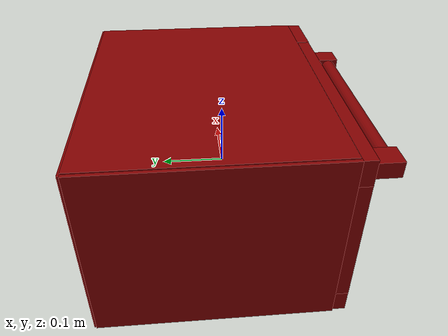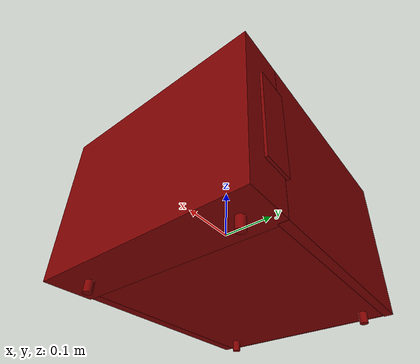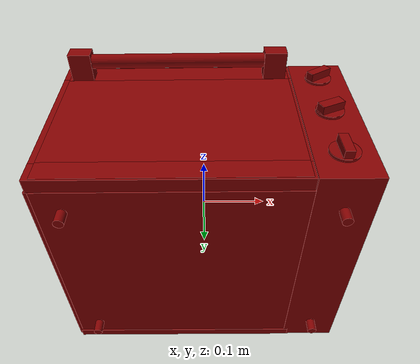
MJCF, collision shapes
<?xml version='1.0' encoding='UTF-8'?>
<mujoco model="model">
  <option timestep="0.002" gravity="0.0 0.0 -9.81"/>
  <compiler angle="radian"/>
  <asset>
    <mesh file="visuals/door.obj" name="door_vis"/>
    <mesh file="visuals/knob_function.obj" name="knob_function_vis"/>
    <mesh file="visuals/knob_temp.obj" name="knob_temp_vis"/>
    <mesh file="visuals/knob_time.obj" name="knob_time_vis"/>
    <mesh file="visuals/rack0.obj" name="rack0_vis"/>
    <mesh file="visuals/Body001.obj" name="Body001_vis"/>
    <mesh file="visuals/window.obj" name="window_vis"/>
    <texture file="visuals/T_BC001.png" name="Body001_material" type="2d"/>
    <material name="Body001_material" rgba="1 1 1 1.0" texture="Body001_material" shininess="-1023.0" specular="0.5"/>
    <texture file="visuals/T_BC001.png" name="door_material" type="2d"/>
    <material name="door_material" rgba="1 1 1 1.0" texture="door_material" shininess="-1023.0" specular="0.5"/>
    <texture file="visuals/T_BC001.png" name="window_material" type="2d"/>
    <material name="window_material" rgba="1 1 1 0.800000011920929" texture="window_material" shininess="0.5" specular="0.3103448502657381"/>
    <texture file="visuals/T_BC001.png" name="knob_function_material" type="2d"/>
    <material name="knob_function_material" rgba="1 1 1 1.0" texture="knob_function_material" shininess="-1023.0" specular="0.3103448502657381"/>
    <texture file="visuals/T_BC001.png" name="knob_temp_material" type="2d"/>
    <material name="knob_temp_material" rgba="1 1 1 1.0" texture="knob_temp_material" shininess="-1023.0" specular="0.3103448502657381"/>
    <texture file="visuals/T_BC001.png" name="knob_time_material" type="2d"/>
    <material name="knob_time_material" rgba="1 1 1 1.0" texture="knob_time_material" shininess="-1023.0" specular="0.3103448502657381"/>
    <texture file="visuals/T_BC001.png" name="rack0_material" type="2d"/>
    <material name="rack0_material" rgba="1 1 1 1.0" texture="rack0_material" shininess="-1023.0" specular="5"/>
  </asset>
  <default>
    <default class="visual">
      <geom conaffinity="0" contype="0" group="1" type="mesh"/>
    </default>
    <default class="collision">
      <geom group="0" rgba="0.5 0 0 0.5"/>
    </default>
    <default class="spawn">
      <geom group="0" rgba="1 1 1 0.5" contype="0" conaffinity="0"/>
      <site group="0" rgba="1 1 1 0.5"/>
    </default>
    <default class="region">
      <geom group="1" conaffinity="0" contype="0" rgba="0 1 0 0"/>
    </default>
  </default>
  <worldbody>
    <body>
      <body name="object">
        <geom mesh="Body001_vis" type="mesh" solimp="0.998 0.998 0.001" solref="0.001 1" friction="0.95 0.3 0.1" class="visual" material="Body001_material"/>
        <geom class="collision" type="box" pos="0.00000000 0.02843389 0.14877398" size="0.22226327657699585 0.17692340910434723 0.00372602348215878" quat="1.0 0.0 0.0 0.0"/>
        <geom class="collision" type="box" pos="-0.22373813 0.02765823 0.00917090" size="0.003761850530281663 0.17769907414913177 0.1415046900510788" quat="1.0 0.0 0.0 0.0"/>
        <geom class="collision" type="box" pos="-0.03912221 0.02781285 -0.12802599" size="0.1831410676240921 0.1775444597005844 0.004880670458078384" quat="1.0 0.0 0.0 0.0"/>
        <geom class="collision" type="box" pos="0.16882846 0.21121943 0.00847419" size="0.026167036965489388 0.002216609427705407 0.08008682727813721" quat="1.0 0.0 0.0 0.0"/>
        <geom class="collision" type="box" pos="-0.03787054 0.20131123 0.00757376" size="0.18627914786338806 0.007928701117634773 0.14193518459796906" quat="1.0 0.0 0.0 0.0"/>
        <geom class="collision" type="box" pos="-0.21356618 0.02121449 0.08355614" size="0.007349487394094467 0.15326964855194092 0.02180192805826664" quat="1.0 0.0 0.0 0.0"/>
        <geom class="collision" type="box" pos="-0.21356618 0.02121449 0.01301686" size="0.0073494985699653625 0.15326987206935883 0.02180192805826664" quat="1.0 0.0 0.0 0.0"/>
        <geom class="collision" type="box" pos="-0.21350443 0.02121449 -0.06090416" size="0.007349509280174971 0.15327011048793793 0.016088787466287613" quat="1.0 0.0 0.0 0.0"/>
        <geom class="collision" type="box" pos="-0.21346040 0.02121449 -0.09972007" size="0.00734958378598094 0.1532716602087021 0.007678606081753969" quat="1.0 0.0 0.0 0.0"/>
        <geom class="collision" type="box" pos="0.13529377 0.02121449 0.08355614" size="0.007349531166255474 0.15327055752277374 0.02180192805826664" quat="1.0 0.0 0.0 0.0"/>
        <geom class="collision" type="box" pos="0.13529377 0.02121449 0.01301686" size="0.0073495423421263695 0.15327079594135284 0.02180192805826664" quat="1.0 0.0 0.0 0.0"/>
        <geom class="collision" type="box" pos="0.13529377 0.02121449 -0.06029340" size="0.0073495530523359776 0.15327101945877075 0.016088787466287613" quat="1.0 0.0 0.0 0.0"/>
        <geom class="collision" type="box" pos="0.13529377 0.02121449 -0.09972007" size="0.00734958378598094 0.1532716602087021 0.00767851434648037" quat="1.0 0.0 0.0 0.0"/>
        <geom class="collision" type="box" pos="0.18508071 0.01904387 0.00805885" size="0.04241928085684776 0.19005697965621948 0.14168821275234222" quat="1.0 0.0 0.0 0.0"/>
        <geom class="collision" type="cylinder" pos="-0.18630978 -0.11325809 -0.14235133" size="0.007314326707273722 0.010449476540088654" quat="1.0 0.0 0.0 0.0"/>
        <geom class="collision" type="cylinder" pos="0.18580696 -0.11325809 -0.14235133" size="0.007314326707273722 0.010449476540088654" quat="1.0 0.0 0.0 0.0"/>
        <geom class="collision" type="cylinder" pos="0.18580696 0.16676851 -0.14235133" size="0.007314326707273722 0.010449476540088654" quat="1.0 0.0 0.0 0.0"/>
        <geom class="collision" type="cylinder" pos="-0.18630978 0.16676851 -0.14235133" size="0.007314326707273722 0.010449476540088654" quat="1.0 0.0 0.0 0.0"/>
        <body name="door">
          <joint axis="1.0 0.0 0.0" pos="-0.04116303 -0.15990138 -0.13112989" limited="true" name="door_joint" range="0.0 1.3707963267948966" type="hinge" damping="1" frictionloss="1" armature=".01" stiffness="1" springref="-1"/>
          <geom mesh="door_vis" type="mesh" solimp="0.998 0.998 0.001" solref="0.001 1" friction="0.95 0.3 0.1" class="visual" material="door_material"/>
          <geom class="collision" type="cylinder" pos="-0.03922431 -0.19769736 0.12110225" size="0.010955676436424255 0.1410427987575531" quat="0.7071041464805603 0.0 0.7071093916893005 0.0" name="door_handle_main"/>
          <geom class="collision" type="box" pos="-0.04150033 -0.16059980 0.12910904" size="0.1834297478199005 0.009900390170514584 0.020225420594215393" quat="1.0 0.0 0.0 0.0"/>
          <geom class="collision" type="box" pos="-0.04150033 -0.16033907 -0.11417433" size="0.1834297478199005 0.009900390170514584 0.017764845862984657" quat="1.0 0.0 0.0 0.0"/>
          <geom class="collision" type="box" pos="-0.21949996 -0.16051759 0.00598033" size="0.005070543847978115 0.010078820399940014 0.1051846370100975" quat="1.0 0.0 0.0 0.0"/>
          <geom class="collision" type="box" pos="0.13866811 -0.16065350 0.00598033" size="0.0029717874713242054 0.010078816674649715 0.1051846370100975" quat="1.0 0.0 0.0 0.0"/>
          <geom class="collision" type="box" pos="-0.20595412 -0.16458757 -0.08982851" size="0.010297520086169243 0.004874586593359709 0.0023025553673505783" quat="0.8851215839385986 -3.1262590738379004e-08 0.46535980701446533 3.063234776945478e-09"/>
          <geom class="collision" type="box" pos="-0.20949593 -0.16449380 -0.09204574" size="0.005653149913996458 0.004874586593359709 0.0044469404965639114" quat="1.0 0.0 0.0 0.0"/>
          <geom class="collision" type="box" pos="-0.21237545 -0.16449380 -0.08518290" size="0.0020805636886507273 0.004794726613909006 0.002525418996810913" quat="1.0 0.0 0.0 0.0"/>
          <geom class="collision" type="box" pos="-0.19303063 -0.19192766 0.12107496" size="0.017399992793798447 0.02154410444200039 0.01221995148807764" quat="1.0 0.0 0.0 0.0"/>
          <geom class="collision" type="box" pos="0.11480179 -0.19192766 0.12107496" size="0.017400026321411133 0.02154410444200039 0.01221997570246458" quat="1.0 0.0 0.0 0.0"/>
          <geom class="collision" type="box" pos="-0.03881927 -0.16667163 0.00938720" size="0.1770523190498352 0.004127198364585638 0.1388532519340515" quat="1.0 0.0 0.0 0.0" name="door_main"/>
          <body name="window">
            <geom mesh="window_vis" type="mesh" solimp="0.998 0.998 0.001" solref="0.001 1" friction="0.95 0.3 0.1" class="visual" material="window_material"/>
            <geom class="collision" type="box" pos="-0.03881927 -0.16667163 0.00554561" size="0.1770506203174591 0.004127277992665768 0.10302073508501053" quat="1.0 0.0 0.0 0.0"/>
          </body>
        </body>
        <body name="knob_function">
          <joint axis="0.0 1.0 0.0" pos="0.18417679 -0.17933552 0.00997470" limited="true" name="knob_function_joint" range="0.0 3.9269908169872414" type="hinge" damping="0.05" armature="1" frictionloss="0.75"/>
          <geom mesh="knob_function_vis" type="mesh" solimp="0.998 0.998 0.001" solref="0.001 1" friction="0.95 0.3 0.1" class="visual" material="knob_function_material"/>
          <geom class="collision" type="box" pos="0.18402024 -0.18248224 0.00967203" size="0.007658299989998341 0.01840347796678543 0.006463090423494577" quat="0.37859827280044556 -0.37859830260276794 -0.5972129702568054 -0.5972129702568054" name="knob_function_main" friction="100 0.5 0.01"/>
          <geom class="collision" type="cylinder" pos="0.18420506 -0.17447813 0.00986960" size="0.02063790149986744 0.001923335250467062" quat="0.7071067094802856 0.7071068286895752 0.0 0.0" friction="100 0.5 0.01"/>
        </body>
        <body name="knob_temp">
          <joint axis="0.0 1.0 0.0" pos="0.18392465 -0.17933552 0.10238823" limited="true" name="knob_temp_joint" range="0.0 4.363323129985823" type="hinge" damping="0.05" armature="1" frictionloss="0.75"/>
          <geom mesh="knob_temp_vis" type="mesh" solimp="0.998 0.998 0.001" solref="0.001 1" friction="0.95 0.3 0.1" class="visual" material="knob_temp_material"/>
          <geom class="collision" type="box" pos="0.18315896 -0.18250903 0.10268161" size="0.006663522683084011 0.018878944218158722 0.006429621484130621" quat="0.33565554022789 -0.33565548062324524 -0.6223627924919128 -0.6223626732826233" name="knob_temp_main" friction="100 0.5 0.01"/>
          <geom class="collision" type="cylinder" pos="0.18379568 -0.17450239 0.10257210" size="0.020145408809185028 0.0018774380441755056" quat="0.7071067094802856 0.7071068286895752 0.0 0.0" friction="100 0.5 0.01"/>
        </body>
        <body name="knob_time">
          <joint axis="0.0 1.0 0.0" pos="0.18435358 -0.17933552 -0.08349990" limited="true" name="knob_time_joint" range="0.0 4.014257279586958" type="hinge" damping="0.05" armature="1" frictionloss="0.75"/>
          <geom mesh="knob_time_vis" type="mesh" solimp="0.998 0.998 0.001" solref="0.001 1" friction="0.95 0.3 0.1" class="visual" material="knob_time_material"/>
          <geom class="collision" type="box" pos="0.18405356 -0.18222488 -0.08340287" size="0.006776513531804085 0.006262445822358131 0.01877010613679886" quat="0.9998572468757629 1.494758830261427e-15 -0.016894835978746414 -2.2699753188248906e-09" name="knob_time_main" friction="100 0.5 0.01"/>
          <geom class="collision" type="cylinder" pos="0.18421029 -0.17439055 -0.08417530" size="0.02104904316365719 0.0019616514910012484" quat="0.7071067094802856 0.7071068286895752 0.0 0.0" friction="100 0.5 0.01"/>
        </body>
        <body name="rack0">
          <geom class="region" name="reg_rack0" type="box" pos="-0.038832269999999995 0.025320969999999998 0.051868575" size="0.16360449999999999 0.14928258 0.090967515"/>
          <joint axis="0.0 -1.0 0.0" pos="-0.03785196 0.02592589 -0.04414470" limited="true" name="rack0_joint" range="0.0 0.22" type="slide" damping="1" frictionloss="1" armature=".01" stiffness="0.05"/>
          <geom mesh="rack0_vis" type="mesh" solimp="0.998 0.998 0.001" solref="0.001 1" friction="0.95 0.3 0.1" class="visual" material="rack0_material"/>
          <geom class="collision" type="box" pos="-0.03774088 0.02456562 -0.04127152" size="0.1795509159564972 0.15340805053710938 0.0021305540576577187" quat="1.0 0.0 0.0 0.0"/>
        </body>
        <geom class="region" name="reg_main" type="box" pos="-4.999999997368221e-09 0.021211444999999995 0.0" size="0.228499995 0.193224595 0.1535"/>
      </body>
    </body>
  </worldbody>
  <actuator>
    <motor name="door_joint_actuator" joint="door_joint" gear="50"/>
    <motor name="knob_function_joint_actuator" joint="knob_function_joint" gear="50"/>
    <motor name="knob_temp_joint_actuator" joint="knob_temp_joint" gear="50"/>
    <motor name="knob_time_joint_actuator" joint="knob_time_joint" gear="50"/>
    <motor name="rack0_joint_actuator" joint="rack0_joint" gear="50"/>
  </actuator>
</mujoco>
